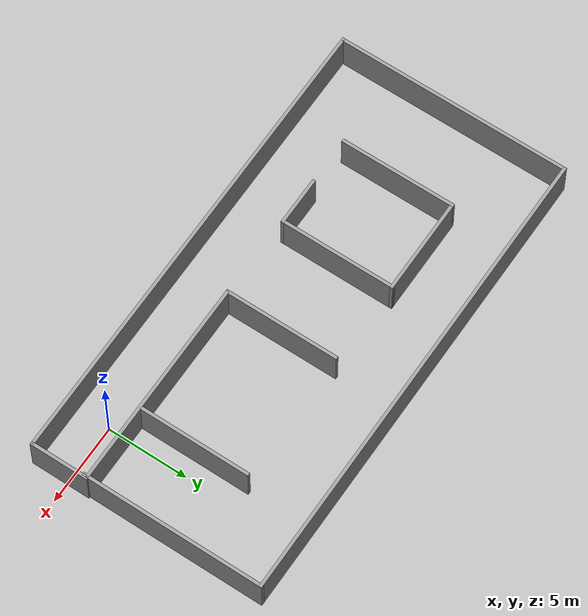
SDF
<?xml version='1.0'?>
<sdf version='1.4'>
  <model name='three_room_building_simple'>
    <link name='Wall_10'>
      <collision name='Wall_10_Collision'>
        <geometry>
          <box>
            <size>7.21822 0.2 2.5</size>
          </box>
        </geometry>
        <pose>0 0 1.25 0 -0 0</pose>
      </collision>
      <visual name='Wall_10_Visual'>
        <pose>0 0 1.25 0 -0 0</pose>
        <geometry>
          <box>
            <size>7.21822 0.2 2.5</size>
          </box>
        </geometry>
        <material>
          <script>
            <uri>file://media/materials/scripts/gazebo.material</uri>
            <name>Gazebo/Grey</name>
          </script>
        </material>
      </visual>
      <velocity_decay>
        <linear>0</linear>
        <angular>0</angular>
      </velocity_decay>
      <pose>-14.4168 4.92608 0 0 0 -1.5708</pose>
    </link>
    <link name='Wall_11'>
      <collision name='Wall_11_Collision'>
        <geometry>
          <box>
            <size>3.10086 0.2 2.5</size>
          </box>
        </geometry>
        <pose>0 0 1.25 0 -0 0</pose>
      </collision>
      <visual name='Wall_11_Visual'>
        <pose>0 0 1.25 0 -0 0</pose>
        <geometry>
          <box>
            <size>3.10086 0.2 2.5</size>
          </box>
        </geometry>
        <material>
          <script>
            <uri>file://media/materials/scripts/gazebo.material</uri>
            <name>Gazebo/Grey</name>
          </script>
        </material>
      </visual>
      <velocity_decay>
        <linear>0</linear>
        <angular>0</angular>
      </velocity_decay>
      <pose>-15.8672 1.41697 0 0 -0 3.14159</pose>
    </link>
    <link name='Wall_13'>
      <collision name='Wall_13_Collision'>
        <geometry>
          <box>
            <size>7.12464 0.2 2.5</size>
          </box>
        </geometry>
        <pose>0 0 1.25 0 -0 0</pose>
      </collision>
      <visual name='Wall_13_Visual'>
        <pose>0 0 1.25 0 -0 0</pose>
        <geometry>
          <box>
            <size>7.12464 0.2 2.5</size>
          </box>
        </geometry>
        <material>
          <script>
            <uri>file://media/materials/scripts/gazebo.material</uri>
            <name>Gazebo/Grey</name>
          </script>
        </material>
      </visual>
      <velocity_decay>
        <linear>0</linear>
        <angular>0</angular>
      </velocity_decay>
      <pose>-9.27008 4.78572 0 0 0 -1.5708</pose>
    </link>
    <link name='Wall_14'>
      <collision name='Wall_14_Collision'>
        <geometry>
          <box>
            <size>13.1135 0.2 2.5</size>
          </box>
        </geometry>
        <pose>0 0 1.25 0 -0 0</pose>
      </collision>
      <visual name='Wall_14_Visual'>
        <pose>0 0 1.25 0 -0 0</pose>
        <geometry>
          <box>
            <size>13.1135 0.2 2.5</size>
          </box>
        </geometry>
        <material>
          <script>
            <uri>file://media/materials/scripts/gazebo.material</uri>
            <name>Gazebo/Grey</name>
          </script>
        </material>
      </visual>
      <velocity_decay>
        <linear>0</linear>
        <angular>0</angular>
      </velocity_decay>
      <pose>-2.81333 1.3234 0 0 -0 0</pose>
    </link>
    <link name='Wall_16'>
      <collision name='Wall_16_Collision'>
        <geometry>
          <box>
            <size>6.84391 0.2 2.5</size>
          </box>
        </geometry>
        <pose>0 0 1.25 0 -0 0</pose>
      </collision>
      <visual name='Wall_16_Visual'>
        <pose>0 0 1.25 0 -0 0</pose>
        <geometry>
          <box>
            <size>6.84391 0.2 2.5</size>
          </box>
        </geometry>
        <material>
          <script>
            <uri>file://media/materials/scripts/gazebo.material</uri>
            <name>Gazebo/Grey</name>
          </script>
        </material>
      </visual>
      <velocity_decay>
        <linear>0</linear>
        <angular>0</angular>
      </velocity_decay>
      <pose>-1.12895 4.83251 0 0 0 -1.5708</pose>
    </link>
    <link name='Wall_23'>
      <collision name='Wall_23_Collision'>
        <geometry>
          <box>
            <size>3.66232 0.2 2.5</size>
          </box>
        </geometry>
        <pose>0 0 1.25 0 -0 0</pose>
      </collision>
      <visual name='Wall_23_Visual'>
        <pose>0 0 1.25 0 -0 0</pose>
        <geometry>
          <box>
            <size>3.66232 0.2 2.5</size>
          </box>
        </geometry>
        <material>
          <script>
            <uri>file://media/materials/scripts/gazebo.material</uri>
            <name>Gazebo/Grey</name>
          </script>
        </material>
      </visual>
      <velocity_decay>
        <linear>0</linear>
        <angular>0</angular>
      </velocity_decay>
      <pose>3.73701 -0.407763 0 0 0 -1.5708</pose>
    </link>
    <link name='Wall_24'>
      <collision name='Wall_24_Collision'>
        <geometry>
          <box>
            <size>29.4894 0.2 2.5</size>
          </box>
        </geometry>
        <pose>0 0 1.25 0 -0 0</pose>
      </collision>
      <visual name='Wall_24_Visual'>
        <pose>0 0 1.25 0 -0 0</pose>
        <geometry>
          <box>
            <size>29.4894 0.2 2.5</size>
          </box>
        </geometry>
        <material>
          <script>
            <uri>file://media/materials/scripts/gazebo.material</uri>
            <name>Gazebo/Grey</name>
          </script>
        </material>
      </visual>
      <velocity_decay>
        <linear>0</linear>
        <angular>0</angular>
      </velocity_decay>
      <pose>-10.9077 -2.13892 0 0 -0 3.14159</pose>
    </link>
    <link name='Wall_25'>
      <collision name='Wall_25_Collision'>
        <geometry>
          <box>
            <size>14.6107 0.2 2.5</size>
          </box>
        </geometry>
        <pose>0 0 1.25 0 -0 0</pose>
      </collision>
      <visual name='Wall_25_Visual'>
        <pose>0 0 1.25 0 -0 0</pose>
        <geometry>
          <box>
            <size>14.6107 0.2 2.5</size>
          </box>
        </geometry>
        <material>
          <script>
            <uri>file://media/materials/scripts/gazebo.material</uri>
            <name>Gazebo/Grey</name>
          </script>
        </material>
      </visual>
      <velocity_decay>
        <linear>0</linear>
        <angular>0</angular>
      </velocity_decay>
      <pose>-25.5523 5.06644 0 0 -0 1.5708</pose>
    </link>
    <link name='Wall_26'>
      <collision name='Wall_26_Collision'>
        <geometry>
          <box>
            <size>29.3958 0.2 2.5</size>
          </box>
        </geometry>
        <pose>0 0 1.25 0 -0 0</pose>
      </collision>
      <visual name='Wall_26_Visual'>
        <pose>0 0 1.25 0 -0 0</pose>
        <geometry>
          <box>
            <size>29.3958 0.2 2.5</size>
          </box>
        </geometry>
        <material>
          <script>
            <uri>file://media/materials/scripts/gazebo.material</uri>
            <name>Gazebo/Grey</name>
          </script>
        </material>
      </visual>
      <velocity_decay>
        <linear>0</linear>
        <angular>0</angular>
      </velocity_decay>
      <pose>-10.9545 12.2718 0 0 -0 0</pose>
    </link>
    <link name='Wall_27'>
      <collision name='Wall_27_Collision'>
        <geometry>
          <box>
            <size>11.3356 0.2 2.5</size>
          </box>
        </geometry>
        <pose>0 0 1.25 0 -0 0</pose>
      </collision>
      <visual name='Wall_27_Visual'>
        <pose>0 0 1.25 0 -0 0</pose>
        <geometry>
          <box>
            <size>11.3356 0.2 2.5</size>
          </box>
        </geometry>
        <material>
          <script>
            <uri>file://media/materials/scripts/gazebo.material</uri>
            <name>Gazebo/Grey</name>
          </script>
        </material>
      </visual>
      <velocity_decay>
        <linear>0</linear>
        <angular>0</angular>
      </velocity_decay>
      <pose>3.64343 6.70403 0 0 0 -1.5708</pose>
    </link>
    <link name='Wall_8'>
      <collision name='Wall_8_Collision'>
        <geometry>
          <box>
            <size>7.21822 0.2 2.5</size>
          </box>
        </geometry>
        <pose>0 0 1.25 0 -0 0</pose>
      </collision>
      <visual name='Wall_8_Visual'>
        <pose>0 0 1.25 0 -0 0</pose>
        <geometry>
          <box>
            <size>7.21822 0.2 2.5</size>
          </box>
        </geometry>
        <material>
          <script>
            <uri>file://media/materials/scripts/gazebo.material</uri>
            <name>Gazebo/Grey</name>
          </script>
        </material>
      </visual>
      <velocity_decay>
        <linear>0</linear>
        <angular>0</angular>
      </velocity_decay>
      <pose>-20.3121 4.92608 0 0 -0 1.5708</pose>
    </link>
    <link name='Wall_9'>
      <collision name='Wall_9_Collision'>
        <geometry>
          <box>
            <size>6.0953 0.2 2.5</size>
          </box>
        </geometry>
        <pose>0 0 1.25 0 -0 0</pose>
      </collision>
      <visual name='Wall_9_Visual'>
        <pose>0 0 1.25 0 -0 0</pose>
        <geometry>
          <box>
            <size>6.0953 0.2 2.5</size>
          </box>
        </geometry>
        <material>
          <script>
            <uri>file://media/materials/scripts/gazebo.material</uri>
            <name>Gazebo/Grey</name>
          </script>
        </material>
      </visual>
      <velocity_decay>
        <linear>0</linear>
        <angular>0</angular>
      </velocity_decay>
      <pose>-17.3644 8.43519 0 0 -0 0</pose>
    </link>
    <static>1</static>
  </model>
</sdf>
